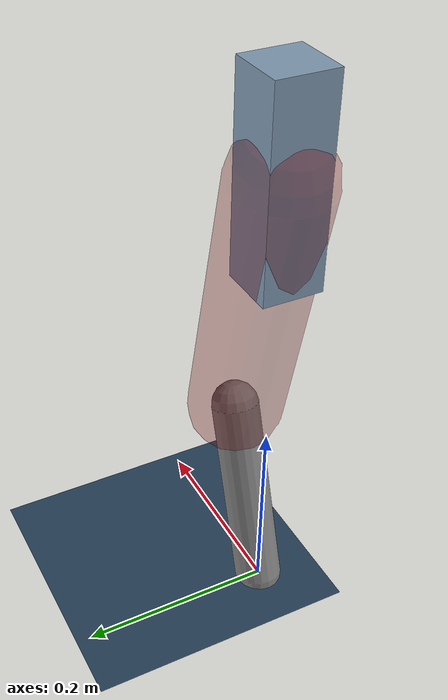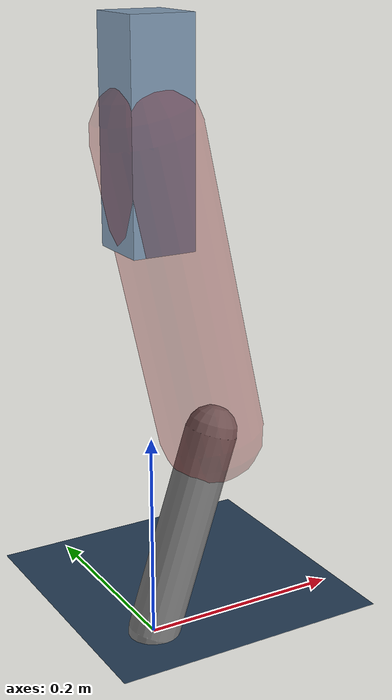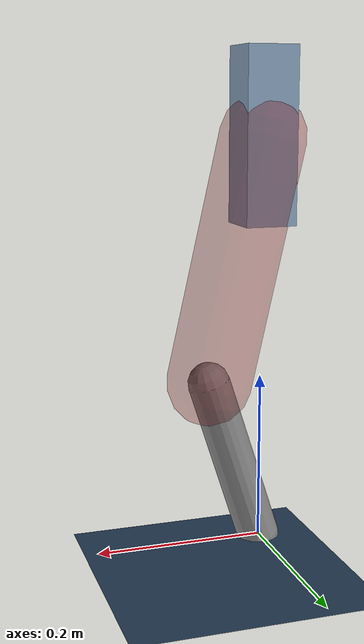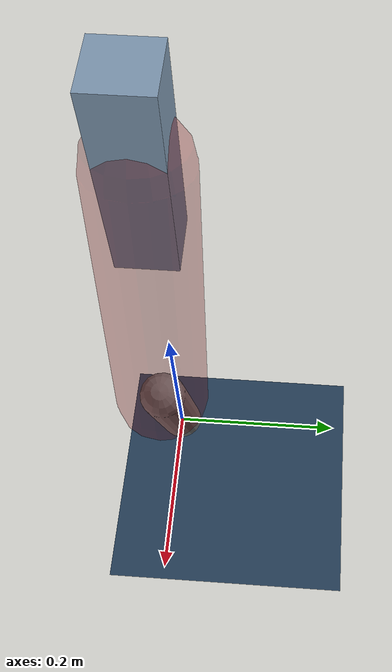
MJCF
<mujoco model="Hopper2D">
	<compiler inertiafromgeom="true" angle="radian" />
	<option timestep="0.001" integrator="implicit" cone="elliptic" solver="Newton" tolerance="1e-10" />

	<default>
		<geom contype="1" conaffinity="1" condim="3" friction="2 0.005 0.0001" solref="0.005 1" />
		<joint limited="true" damping="0.1" />
	</default>

	<asset>
		<texture name="skybox" type="skybox" builtin="gradient" rgb1=".4 .6 .8" rgb2="0 0 0" width="800" height="800" />
		<texture name="grid" type="2d" builtin="checker" rgb1=".1 .2 .3" rgb2=".2 .3 .4" width="300" height="300" mark="edge" markrgb=".2 .3 .4" />
		<material name="ground" texture="grid" texrepeat="1 1" texuniform="true" reflectance="0.1" />
		<material name="leg" rgba="0.5 0.6 0.7 1" />
	</asset>

	<worldbody>

		<geom name="floor" type="plane" size="5 5 0.25" material="ground" />

		<light directional="false" diffuse="0.8 0.8 0.8" specular="0.3 0.3 0.3" pos="0 0 2" dir="0 0 -1" />
		<light mode="targetbodycom" target="base" directional="false" diffuse="0.8 0.8 0.8" specular="0.3 0.3 0.3" pos="0 0 2" dir="0 0 -1" />

		<camera name="fixed" pos="0 -2 1" xyaxes="1 0 0 0 0 1" />
		<camera name="tracking" mode="trackcom" pos="0 -3 1" />

		<body name="root" pos="0 0 0.48036324891723975">
			<joint name="slide_x" type="slide" axis="1 0 0" range="-100 100" />
			<joint name="slide_z" type="slide" axis="0 0 1" range="0 10" />

			<body name="base" pos="0 0 0">
				<geom name="torso" type="box" size="0.03 0.03 0.1" mass="1.947" material="leg" />

				<body name="link1" pos="0 0 0" euler="0 1.3496174265841636 0">
					<joint type="hinge" axis="0 -1 0" pos="0 0 0" name="hinge1" limited="true" range="-3.14 3.14" stiffness="0" damping="0.1" />
					<geom name="thigh" type="capsule" fromto="0 0 0 0.29169014045484365 0 0" size="0.05" rgba="0.5 0 0 0.3" mass="0.9663633792280779" />

					<body name="link2" pos="0.29169014045484365 0 0" euler="0 0.5370862010547447 0">
						<joint type="hinge" axis="0 -1 0" pos="0 0 0" name="hinge2" limited="true" range="-3.14 3.14" stiffness="0" damping="0.1" />
						<geom name="shank" type="capsule" fromto="0 0 0 0.205971340299131 0 0" size="0.025" mass="0.4058770722393048" />

					</body>
				</body>
			</body>
		</body>
	</worldbody>

	<actuator>
		<motor name="torque1" joint="hinge1" ctrlrange="-60.62822323702801 60.62822323702801" ctrllimited="true" gear="1" />
		<motor name="torque2" joint="hinge2" ctrlrange="-47.487383676615686 47.487383676615686" ctrllimited="true" gear="1" />
	</actuator>
</mujoco>
